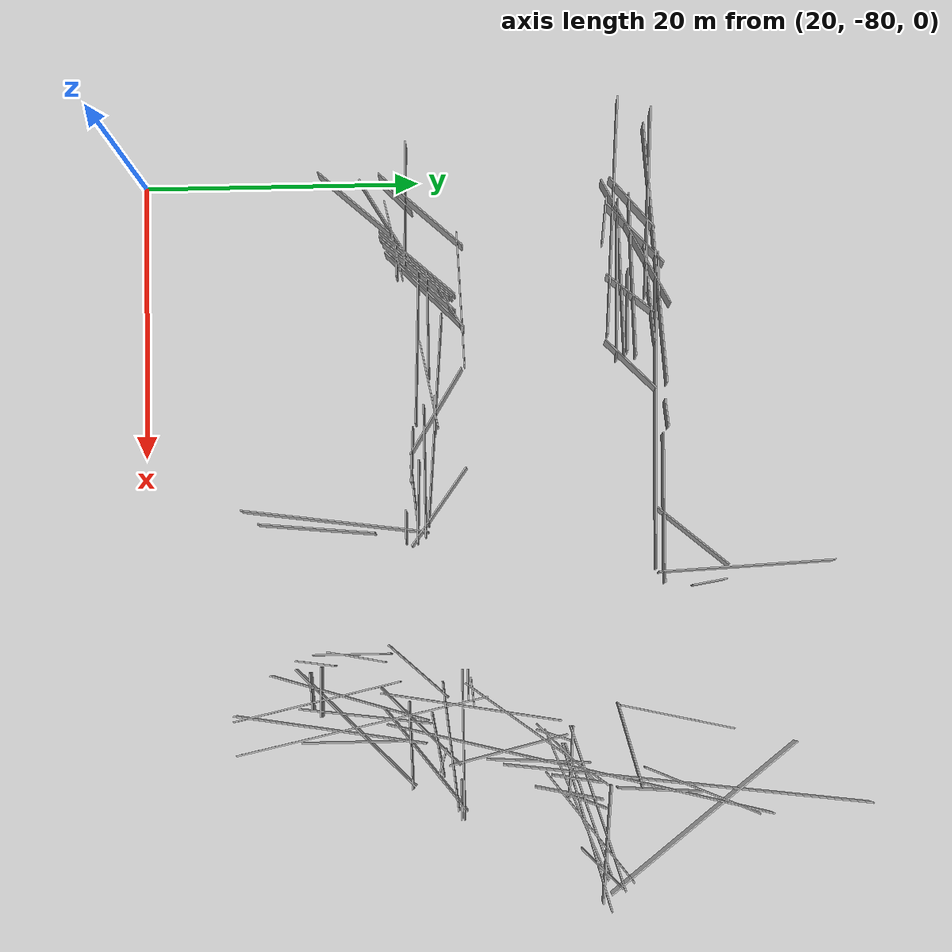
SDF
<sdf version="1.6">
 <world name="slam_world">
  <model name="ground_plane">
   <static>true</static>
   <link name="link">
    <collision name="collision">
     <geometry><plane><normal>0 0 1</normal><size>100 100</size></plane></geometry>
    </collision>
    <visual name="visual">
     <geometry><plane><normal>0 0 1</normal><size>100 100</size></plane></geometry>
     <material>
      <ambient>0.8 0.8 0.8 1</ambient>
      <diffuse>0.8 0.8 0.8 1</diffuse>
      <specular>0.8 0.8 0.8 1</specular>
     </material>
    </visual>
   </link>
  </model>
  <model name="wall_27">
   <static>true</static>
   <pose>34.1 -44.8 1.0 0 0 0.7853981633974463</pose>
   <link name="link">
    <collision name="collision"><geometry><box><size>5.091168824543144 0.1 2.0</size></box></geometry></collision>
    <visual name="visual">
     <geometry><box><size>5.091168824543144 0.1 2.0</size></box></geometry>
     <material><ambient>0.5 0.5 0.5 1</ambient><diffuse>0.7 0.7 0.7 1</diffuse></material>
    </visual>
   </link>
  </model>
  <model name="wall_30">
   <static>true</static>
   <pose>61.00000000000001 -61.1 1.0 0 0 0.032246882435254365</pose>
   <link name="link">
    <collision name="collision"><geometry><box><size>6.203224967708332 0.1 2.0</size></box></geometry></collision>
    <visual name="visual">
     <geometry><box><size>6.203224967708332 0.1 2.0</size></box></geometry>
     <material><ambient>0.5 0.5 0.5 1</ambient><diffuse>0.7 0.7 0.7 1</diffuse></material>
    </visual>
   </link>
  </model>
  <model name="wall_52">
   <static>true</static>
   <pose>59.800000000000004 -66.8 1.0 0 0 1.4104208828189457</pose>
   <link name="link">
    <collision name="collision">
     <geometry><box><size>13.776792079435612 0.1 2.0</size></box></geometry>
    </collision>
    <visual name="visual">
     <geometry><box><size>13.776792079435612 0.1 2.0</size></box></geometry>
     <material><ambient>0.5 0.5 0.5 1</ambient><diffuse>0.7 0.7 0.7 1</diffuse></material>
    </visual>
   </link>
  </model>
  <model name="wall_70">
   <static>true</static>
   <pose>43.7 -60.3 1.0 0 0 -0.0333209958782453</pose>
   <link name="link">
    <collision name="collision"><geometry><box><size>6.003332407921453 0.1 2.0</size></box></geometry></collision>
    <visual name="visual">
     <geometry><box><size>6.003332407921453 0.1 2.0</size></box></geometry>
     <material><ambient>0.5 0.5 0.5 1</ambient><diffuse>0.7 0.7 0.7 1</diffuse></material>
    </visual>
   </link>
  </model>
  <model name="wall_113">
   <static>true</static>
   <pose>64.1 -41.599999999999994 1.0 0 0 1.448335269377555</pose>
   <link name="link">
    <collision name="collision">
     <geometry><box><size>26.196182928052707 0.1 2.0</size></box></geometry>
    </collision>
    <visual name="visual">
     <geometry><box><size>26.196182928052707 0.1 2.0</size></box></geometry>
     <material><ambient>0.5 0.5 0.5 1</ambient><diffuse>0.7 0.7 0.7 1</diffuse></material>
    </visual>
   </link>
  </model>
  <model name="wall_114">
   <static>true</static>
   <pose>21.4 -61.49999999999999 1.0 0 0 0.7853981633974483</pose>
   <link name="link">
    <collision name="collision"><geometry><box><size>3.111269837220813 0.1 2.0</size></box></geometry></collision>
    <visual name="visual">
     <geometry><box><size>3.111269837220813 0.1 2.0</size></box></geometry>
     <material><ambient>0.5 0.5 0.5 1</ambient><diffuse>0.7 0.7 0.7 1</diffuse></material>
    </visual>
   </link>
  </model>
  <model name="wall_126">
   <static>true</static>
   <pose>40.3 -60.699999999999996 1.0 0 0 -0.04995839572194347</pose>
   <link name="link">
    <collision name="collision"><geometry><box><size>4.004996878900157 0.1 2.0</size></box></geometry></collision>
    <visual name="visual">
     <geometry><box><size>4.004996878900157 0.1 2.0</size></box></geometry>
     <material><ambient>0.5 0.5 0.5 1</ambient><diffuse>0.7 0.7 0.7 1</diffuse></material>
    </visual>
   </link>
  </model>
  <model name="wall_132">
   <static>true</static>
   <pose>27.6 -42.599999999999994 1.0 0 0 0.0</pose>
   <link name="link">
    <collision name="collision">
     <geometry><box><size>3.3999999999999915 0.1 2.0</size></box></geometry>
    </collision>
    <visual name="visual">
     <geometry><box><size>3.3999999999999915 0.1 2.0</size></box></geometry>
     <material><ambient>0.5 0.5 0.5 1</ambient><diffuse>0.7 0.7 0.7 1</diffuse></material>
    </visual>
   </link>
  </model>
  <model name="wall_159">
   <static>true</static>
   <pose>63.6 -49.39999999999999 1.0 0 0 1.4056476493802672</pose>
   <link name="link">
    <collision name="collision">
     <geometry><box><size>3.6496575181789273 0.1 2.0</size></box></geometry>
    </collision>
    <visual name="visual">
     <geometry><box><size>3.6496575181789273 0.1 2.0</size></box></geometry>
     <material><ambient>0.5 0.5 0.5 1</ambient><diffuse>0.7 0.7 0.7 1</diffuse></material>
    </visual>
   </link>
  </model>
  <model name="wall_171">
   <static>true</static>
   <pose>38.00000000000001 -43.099999999999994 1.0 0 0 -0.027515989285454158</pose>
   <link name="link">
    <collision name="collision">
     <geometry><box><size>21.808255317654364 0.1 2.0</size></box></geometry>
    </collision>
    <visual name="visual">
     <geometry><box><size>21.808255317654364 0.1 2.0</size></box></geometry>
     <material><ambient>0.5 0.5 0.5 1</ambient><diffuse>0.7 0.7 0.7 1</diffuse></material>
    </visual>
   </link>
  </model>
  <model name="wall_186">
   <static>true</static>
   <pose>37.400000000000006 -59.0 1.0 0 0 0.0</pose>
   <link name="link">
    <collision name="collision">
     <geometry><box><size>2.5999999999999943 0.1 2.0</size></box></geometry>
    </collision>
    <visual name="visual">
     <geometry><box><size>2.5999999999999943 0.1 2.0</size></box></geometry>
     <material><ambient>0.5 0.5 0.5 1</ambient><diffuse>0.7 0.7 0.7 1</diffuse></material>
    </visual>
   </link>
  </model>
  <model name="wall_197">
   <static>true</static>
   <pose>21.800000000000004 -64.6 1.0 0 0 0.8465463260467475</pose>
   <link name="link">
    <collision name="collision"><geometry><box><size>6.94262198308391 0.1 2.0</size></box></geometry></collision>
    <visual name="visual">
     <geometry><box><size>6.94262198308391 0.1 2.0</size></box></geometry>
     <material><ambient>0.5 0.5 0.5 1</ambient><diffuse>0.7 0.7 0.7 1</diffuse></material>
    </visual>
   </link>
  </model>
  <model name="wall_202">
   <static>true</static>
   <pose>41.5 -59.8 1.0 0 0 0.0</pose>
   <link name="link">
    <collision name="collision"><geometry><box><size>9.599999999999994 0.1 2.0</size></box></geometry></collision>
    <visual name="visual">
     <geometry><box><size>9.599999999999994 0.1 2.0</size></box></geometry>
     <material><ambient>0.5 0.5 0.5 1</ambient><diffuse>0.7 0.7 0.7 1</diffuse></material>
    </visual>
   </link>
  </model>
  <model name="wall_252">
   <static>true</static>
   <pose>28.300000000000004 -59.599999999999994 1.0 0 0 0.7853981633974471</pose>
   <link name="link">
    <collision name="collision"><geometry><box><size>7.919595949289334 0.1 2.0</size></box></geometry></collision>
    <visual name="visual">
     <geometry><box><size>7.919595949289334 0.1 2.0</size></box></geometry>
     <material><ambient>0.5 0.5 0.5 1</ambient><diffuse>0.7 0.7 0.7 1</diffuse></material>
    </visual>
   </link>
  </model>
  <model name="wall_261">
   <static>true</static>
   <pose>44.50000000000001 -42.699999999999996 1.0 0 0 -0.01851640206800931</pose>
   <link name="link">
    <collision name="collision">
     <geometry><box><size>10.801851693112619 0.1 2.0</size></box></geometry>
    </collision>
    <visual name="visual">
     <geometry><box><size>10.801851693112619 0.1 2.0</size></box></geometry>
     <material><ambient>0.5 0.5 0.5 1</ambient><diffuse>0.7 0.7 0.7 1</diffuse></material>
    </visual>
   </link>
  </model>
  <model name="wall_263">
   <static>true</static>
   <pose>25.9 -42.79999999999999 1.0 0 0 0.06241880999595749</pose>
   <link name="link">
    <collision name="collision"><geometry><box><size>19.23746345025768 0.1 2.0</size></box></geometry></collision>
    <visual name="visual">
     <geometry><box><size>19.23746345025768 0.1 2.0</size></box></geometry>
     <material><ambient>0.5 0.5 0.5 1</ambient><diffuse>0.7 0.7 0.7 1</diffuse></material>
    </visual>
   </link>
  </model>
  <model name="wall_270">
   <static>true</static>
   <pose>61.0 -57.39999999999999 1.0 0 0 0.0</pose>
   <link name="link">
    <collision name="collision">
     <geometry><box><size>10.599999999999994 0.1 2.0</size></box></geometry>
    </collision>
    <visual name="visual">
     <geometry><box><size>10.599999999999994 0.1 2.0</size></box></geometry>
     <material><ambient>0.5 0.5 0.5 1</ambient><diffuse>0.7 0.7 0.7 1</diffuse></material>
    </visual>
   </link>
  </model>
  <model name="wall_277">
   <static>true</static>
   <pose>59.7 -65.0 1.0 0 0 0.7853981633974475</pose>
   <link name="link">
    <collision name="collision">
     <geometry><box><size>11.879393923933996 0.1 2.0</size></box></geometry>
    </collision>
    <visual name="visual">
     <geometry><box><size>11.879393923933996 0.1 2.0</size></box></geometry>
     <material><ambient>0.5 0.5 0.5 1</ambient><diffuse>0.7 0.7 0.7 1</diffuse></material>
    </visual>
   </link>
  </model>
  <model name="wall_312">
   <static>true</static>
   <pose>32.400000000000006 -60.199999999999996 1.0 0 0 -0.0350733305332246</pose>
   <link name="link">
    <collision name="collision">
     <geometry><box><size>11.407015385279363 0.1 2.0</size></box></geometry>
    </collision>
    <visual name="visual">
     <geometry><box><size>11.407015385279363 0.1 2.0</size></box></geometry>
     <material><ambient>0.5 0.5 0.5 1</ambient><diffuse>0.7 0.7 0.7 1</diffuse></material>
    </visual>
   </link>
  </model>
  <model name="wall_337">
   <static>true</static>
   <pose>30.900000000000006 -59.39999999999999 1.0 0 0 0.0</pose>
   <link name="link">
    <collision name="collision"><geometry><box><size>7.599999999999994 0.1 2.0</size></box></geometry></collision>
    <visual name="visual">
     <geometry><box><size>7.599999999999994 0.1 2.0</size></box></geometry>
     <material><ambient>0.5 0.5 0.5 1</ambient><diffuse>0.7 0.7 0.7 1</diffuse></material>
    </visual>
   </link>
  </model>
  <model name="wall_353">
   <static>true</static>
   <pose>24.5 -61.8 1.0 0 0 0.21109333322274482</pose>
   <link name="link">
    <collision name="collision"><geometry><box><size>5.727128425310533 0.1 2.0</size></box></geometry></collision>
    <visual name="visual">
     <geometry><box><size>5.727128425310533 0.1 2.0</size></box></geometry>
     <material><ambient>0.5 0.5 0.5 1</ambient><diffuse>0.7 0.7 0.7 1</diffuse></material>
    </visual>
   </link>
  </model>
  <model name="wall_365">
   <static>true</static>
   <pose>55.1 -67.8 1.0 0 0 1.4288992721907348</pose>
   <link name="link">
    <collision name="collision"><geometry><box><size>2.828427124746172 0.1 2.0</size></box></geometry></collision>
    <visual name="visual">
     <geometry><box><size>2.828427124746172 0.1 2.0</size></box></geometry>
     <material><ambient>0.5 0.5 0.5 1</ambient><diffuse>0.7 0.7 0.7 1</diffuse></material>
    </visual>
   </link>
  </model>
  <model name="wall_373">
   <static>true</static>
   <pose>28.9 -44.699999999999996 1.0 0 0 0.8818719385800344</pose>
   <link name="link">
    <collision name="collision">
     <geometry><box><size>4.4045431091090395 0.1 2.0</size></box></geometry>
    </collision>
    <visual name="visual">
     <geometry><box><size>4.4045431091090395 0.1 2.0</size></box></geometry>
     <material><ambient>0.5 0.5 0.5 1</ambient><diffuse>0.7 0.7 0.7 1</diffuse></material>
    </visual>
   </link>
  </model>
  <model name="wall_375">
   <static>true</static>
   <pose>62.9 -49.199999999999996 1.0 0 0 1.3258176636680326</pose>
   <link name="link">
    <collision name="collision">
     <geometry><box><size>28.037118254200095 0.1 2.0</size></box></geometry>
    </collision>
    <visual name="visual">
     <geometry><box><size>28.037118254200095 0.1 2.0</size></box></geometry>
     <material><ambient>0.5 0.5 0.5 1</ambient><diffuse>0.7 0.7 0.7 1</diffuse></material>
    </visual>
   </link>
  </model>
  <model name="wall_377">
   <static>true</static>
   <pose>25.1 -44.199999999999996 1.0 0 0 0.48088728019533544</pose>
   <link name="link">
    <collision name="collision">
     <geometry><box><size>10.376897416858279 0.1 2.0</size></box></geometry>
    </collision>
    <visual name="visual">
     <geometry><box><size>10.376897416858279 0.1 2.0</size></box></geometry>
     <material><ambient>0.5 0.5 0.5 1</ambient><diffuse>0.7 0.7 0.7 1</diffuse></material>
    </visual>
   </link>
  </model>
  <model name="wall_398">
   <static>true</static>
   <pose>57.800000000000004 -67.69999999999999 1.0 0 0 -1.3539227111284875</pose>
   <link name="link">
    <collision name="collision"><geometry><box><size>12.08304597359457 0.1 2.0</size></box></geometry></collision>
    <visual name="visual">
     <geometry><box><size>12.08304597359457 0.1 2.0</size></box></geometry>
     <material><ambient>0.5 0.5 0.5 1</ambient><diffuse>0.7 0.7 0.7 1</diffuse></material>
    </visual>
   </link>
  </model>
  <model name="wall_414">
   <static>true</static>
   <pose>45.50000000000001 -67.6 1.0 0 0 1.4758446204521407</pose>
   <link name="link">
    <collision name="collision"><geometry><box><size>8.438009243891601 0.1 2.0</size></box></geometry></collision>
    <visual name="visual">
     <geometry><box><size>8.438009243891601 0.1 2.0</size></box></geometry>
     <material><ambient>0.5 0.5 0.5 1</ambient><diffuse>0.7 0.7 0.7 1</diffuse></material>
    </visual>
   </link>
  </model>
  <model name="wall_430">
   <static>true</static>
   <pose>58.9 -64.3 1.0 0 0 1.4438235371808175</pose>
   <link name="link">
    <collision name="collision"><geometry><box><size>9.476286192385713 0.1 2.0</size></box></geometry></collision>
    <visual name="visual">
     <geometry><box><size>9.476286192385713 0.1 2.0</size></box></geometry>
     <material><ambient>0.5 0.5 0.5 1</ambient><diffuse>0.7 0.7 0.7 1</diffuse></material>
    </visual>
   </link>
  </model>
  <model name="wall_461">
   <static>true</static>
   <pose>65.70000000000002 -47.99999999999999 1.0 0 0 0.3009202343604256</pose>
   <link name="link">
    <collision name="collision">
     <geometry><box><size>12.145781160551191 0.1 2.0</size></box></geometry>
    </collision>
    <visual name="visual">
     <geometry><box><size>12.145781160551191 0.1 2.0</size></box></geometry>
     <material><ambient>0.5 0.5 0.5 1</ambient><diffuse>0.7 0.7 0.7 1</diffuse></material>
    </visual>
   </link>
  </model>
  <model name="wall_469">
   <static>true</static>
   <pose>68.2 -47.4 1.0 0 0 -0.09725319825156556</pose>
   <link name="link">
    <collision name="collision"><geometry><box><size>8.238931969618381 0.1 2.0</size></box></geometry></collision>
    <visual name="visual">
     <geometry><box><size>8.238931969618381 0.1 2.0</size></box></geometry>
     <material><ambient>0.5 0.5 0.5 1</ambient><diffuse>0.7 0.7 0.7 1</diffuse></material>
    </visual>
   </link>
  </model>
  <model name="wall_489">
   <static>true</static>
   <pose>27.800000000000004 -45.599999999999994 1.0 0 0 -0.0338853299041181</pose>
   <link name="link">
    <collision name="collision"><geometry><box><size>11.80677771451635 0.1 2.0</size></box></geometry></collision>
    <visual name="visual">
     <geometry><box><size>11.80677771451635 0.1 2.0</size></box></geometry>
     <material><ambient>0.5 0.5 0.5 1</ambient><diffuse>0.7 0.7 0.7 1</diffuse></material>
    </visual>
   </link>
  </model>
  <model name="wall_495">
   <static>true</static>
   <pose>62.0 -60.1 1.0 0 0 0.664774494817345</pose>
   <link name="link">
    <collision name="collision"><geometry><box><size>9.40212741883453 0.1 2.0</size></box></geometry></collision>
    <visual name="visual">
     <geometry><box><size>9.40212741883453 0.1 2.0</size></box></geometry>
     <material><ambient>0.5 0.5 0.5 1</ambient><diffuse>0.7 0.7 0.7 1</diffuse></material>
    </visual>
   </link>
  </model>
  <model name="wall_513">
   <static>true</static>
   <pose>27.5 -44.49999999999999 1.0 0 0 0.016665123713940987</pose>
   <link name="link">
    <collision name="collision">
     <geometry><box><size>12.001666550941998 0.1 2.0</size></box></geometry>
    </collision>
    <visual name="visual">
     <geometry><box><size>12.001666550941998 0.1 2.0</size></box></geometry>
     <material><ambient>0.5 0.5 0.5 1</ambient><diffuse>0.7 0.7 0.7 1</diffuse></material>
    </visual>
   </link>
  </model>
  <model name="wall_519">
   <static>true</static>
   <pose>62.400000000000006 -49.8 1.0 0 0 -0.07982998571223844</pose>
   <link name="link">
    <collision name="collision"><geometry><box><size>5.015974481593782 0.1 2.0</size></box></geometry></collision>
    <visual name="visual">
     <geometry><box><size>5.015974481593782 0.1 2.0</size></box></geometry>
     <material><ambient>0.5 0.5 0.5 1</ambient><diffuse>0.7 0.7 0.7 1</diffuse></material>
    </visual>
   </link>
  </model>
  <model name="wall_532">
   <static>true</static>
   <pose>58.4 -56.8 1.0 0 0 1.4005844015094222</pose>
   <link name="link">
    <collision name="collision">
     <geometry><box><size>12.987686476043386 0.1 2.0</size></box></geometry>
    </collision>
    <visual name="visual">
     <geometry><box><size>12.987686476043386 0.1 2.0</size></box></geometry>
     <material><ambient>0.5 0.5 0.5 1</ambient><diffuse>0.7 0.7 0.7 1</diffuse></material>
    </visual>
   </link>
  </model>
  <model name="wall_542">
   <static>true</static>
   <pose>57.6 -65.4 1.0 0 0 1.2760662215855199</pose>
   <link name="link">
    <collision name="collision">
     <geometry><box><size>11.704699910719626 0.1 2.0</size></box></geometry>
    </collision>
    <visual name="visual">
     <geometry><box><size>11.704699910719626 0.1 2.0</size></box></geometry>
     <material><ambient>0.5 0.5 0.5 1</ambient><diffuse>0.7 0.7 0.7 1</diffuse></material>
    </visual>
   </link>
  </model>
  <model name="wall_548">
   <static>true</static>
   <pose>22.400000000000006 -59.8 1.0 0 0 0.8379812250083896</pose>
   <link name="link">
    <collision name="collision"><geometry><box><size>8.07217442824423 0.1 2.0</size></box></geometry></collision>
    <visual name="visual">
     <geometry><box><size>8.07217442824423 0.1 2.0</size></box></geometry>
     <material><ambient>0.5 0.5 0.5 1</ambient><diffuse>0.7 0.7 0.7 1</diffuse></material>
    </visual>
   </link>
  </model>
  <model name="wall_551">
   <static>true</static>
   <pose>64.5 -43.599999999999994 1.0 0 0 1.504228163019072</pose>
   <link name="link">
    <collision name="collision"><geometry><box><size>6.013318551349164 0.1 2.0</size></box></geometry></collision>
    <visual name="visual">
     <geometry><box><size>6.013318551349164 0.1 2.0</size></box></geometry>
     <material><ambient>0.5 0.5 0.5 1</ambient><diffuse>0.7 0.7 0.7 1</diffuse></material>
    </visual>
   </link>
  </model>
  <model name="wall_552">
   <static>true</static>
   <pose>60.50000000000001 -50.99999999999999 1.0 0 0 1.2490457723982544</pose>
   <link name="link">
    <collision name="collision"><geometry><box><size>2.529822128134694 0.1 2.0</size></box></geometry></collision>
    <visual name="visual">
     <geometry><box><size>2.529822128134694 0.1 2.0</size></box></geometry>
     <material><ambient>0.5 0.5 0.5 1</ambient><diffuse>0.7 0.7 0.7 1</diffuse></material>
    </visual>
   </link>
  </model>
  <model name="wall_567">
   <static>true</static>
   <pose>44.1 -58.8 1.0 0 0 -0.6202494859828207</pose>
   <link name="link">
    <collision name="collision"><geometry><box><size>6.881860213634108 0.1 2.0</size></box></geometry></collision>
    <visual name="visual">
     <geometry><box><size>6.881860213634108 0.1 2.0</size></box></geometry>
     <material><ambient>0.5 0.5 0.5 1</ambient><diffuse>0.7 0.7 0.7 1</diffuse></material>
    </visual>
   </link>
  </model>
  <model name="wall_569">
   <static>true</static>
   <pose>65.1 -48.99999999999999 1.0 0 0 1.212025656524324</pose>
   <link name="link">
    <collision name="collision"><geometry><box><size>3.417601498127016 0.1 2.0</size></box></geometry></collision>
    <visual name="visual">
     <geometry><box><size>3.417601498127016 0.1 2.0</size></box></geometry>
     <material><ambient>0.5 0.5 0.5 1</ambient><diffuse>0.7 0.7 0.7 1</diffuse></material>
    </visual>
   </link>
  </model>
  <model name="wall_576">
   <static>true</static>
   <pose>45.5 -61.2 1.0 0 0 0.0</pose>
   <link name="link">
    <collision name="collision">
     <geometry><box><size>2.4000000000000057 0.1 2.0</size></box></geometry>
    </collision>
    <visual name="visual">
     <geometry><box><size>2.4000000000000057 0.1 2.0</size></box></geometry>
     <material><ambient>0.5 0.5 0.5 1</ambient><diffuse>0.7 0.7 0.7 1</diffuse></material>
    </visual>
   </link>
  </model>
  <model name="wall_600">
   <static>true</static>
   <pose>57.1 -68.1 1.0 0 0 0.07130746478528636</pose>
   <link name="link">
    <collision name="collision">
     <geometry><box><size>2.8071337695236362 0.1 2.0</size></box></geometry>
    </collision>
    <visual name="visual">
     <geometry><box><size>2.8071337695236362 0.1 2.0</size></box></geometry>
     <material><ambient>0.5 0.5 0.5 1</ambient><diffuse>0.7 0.7 0.7 1</diffuse></material>
    </visual>
   </link>
  </model>
  <model name="wall_603">
   <static>true</static>
   <pose>23.300000000000004 -62.3 1.0 0 0 0.5358112379604656</pose>
   <link name="link">
    <collision name="collision">
     <geometry><box><size>7.4431176263713565 0.1 2.0</size></box></geometry>
    </collision>
    <visual name="visual">
     <geometry><box><size>7.4431176263713565 0.1 2.0</size></box></geometry>
     <material><ambient>0.5 0.5 0.5 1</ambient><diffuse>0.7 0.7 0.7 1</diffuse></material>
    </visual>
   </link>
  </model>
  <model name="wall_604">
   <static>true</static>
   <pose>48.800000000000004 -36.89999999999999 1.0 0 0 -1.5232132235179126</pose>
   <link name="link">
    <collision name="collision">
     <geometry><box><size>12.614277624977177 0.1 2.0</size></box></geometry>
    </collision>
    <visual name="visual">
     <geometry><box><size>12.614277624977177 0.1 2.0</size></box></geometry>
     <material><ambient>0.5 0.5 0.5 1</ambient><diffuse>0.7 0.7 0.7 1</diffuse></material>
    </visual>
   </link>
  </model>
  <model name="wall_629">
   <static>true</static>
   <pose>49.900000000000006 -39.599999999999994 1.0 0 0 -1.4056476493802679</pose>
   <link name="link">
    <collision name="collision">
     <geometry><box><size>2.4331050121192943 0.1 2.0</size></box></geometry>
    </collision>
    <visual name="visual">
     <geometry><box><size>2.4331050121192943 0.1 2.0</size></box></geometry>
     <material><ambient>0.5 0.5 0.5 1</ambient><diffuse>0.7 0.7 0.7 1</diffuse></material>
    </visual>
   </link>
  </model>
  <model name="wall_633">
   <static>true</static>
   <pose>62.300000000000004 -52.099999999999994 1.0 0 0 1.5167948264189295</pose>
   <link name="link">
    <collision name="collision"><geometry><box><size>7.410802925459567 0.1 2.0</size></box></geometry></collision>
    <visual name="visual">
     <geometry><box><size>7.410802925459567 0.1 2.0</size></box></geometry>
     <material><ambient>0.5 0.5 0.5 1</ambient><diffuse>0.7 0.7 0.7 1</diffuse></material>
    </visual>
   </link>
  </model>
  <model name="wall_672">
   <static>true</static>
   <pose>64.60000000000001 -49.99999999999999 1.0 0 0 1.365400937605129</pose>
   <link name="link">
    <collision name="collision"><geometry><box><size>4.903060268852503 0.1 2.0</size></box></geometry></collision>
    <visual name="visual">
     <geometry><box><size>4.903060268852503 0.1 2.0</size></box></geometry>
     <material><ambient>0.5 0.5 0.5 1</ambient><diffuse>0.7 0.7 0.7 1</diffuse></material>
    </visual>
   </link>
  </model>
  <model name="wall_678">
   <static>true</static>
   <pose>22.0 -60.9 1.0 0 0 -0.021273386024061494</pose>
   <link name="link">
    <collision name="collision"><geometry><box><size>9.402127418834533 0.1 2.0</size></box></geometry></collision>
    <visual name="visual">
     <geometry><box><size>9.402127418834533 0.1 2.0</size></box></geometry>
     <material><ambient>0.5 0.5 0.5 1</ambient><diffuse>0.7 0.7 0.7 1</diffuse></material>
    </visual>
   </link>
  </model>
  <model name="wall_695">
   <static>true</static>
   <pose>37.800000000000004 -58.99999999999999 1.0 0 0 -0.07776493960273256</pose>
   <link name="link">
    <collision name="collision">
     <geometry><box><size>15.446682491719693 0.1 2.0</size></box></geometry>
    </collision>
    <visual name="visual">
     <geometry><box><size>15.446682491719693 0.1 2.0</size></box></geometry>
     <material><ambient>0.5 0.5 0.5 1</ambient><diffuse>0.7 0.7 0.7 1</diffuse></material>
    </visual>
   </link>
  </model>
  <model name="wall_702">
   <static>true</static>
   <pose>64.6 -40.599999999999994 1.0 0 0 1.168925679354441</pose>
   <link name="link">
    <collision name="collision"><geometry><box><size>8.692525524840288 0.1 2.0</size></box></geometry></collision>
    <visual name="visual">
     <geometry><box><size>8.692525524840288 0.1 2.0</size></box></geometry>
     <material><ambient>0.5 0.5 0.5 1</ambient><diffuse>0.7 0.7 0.7 1</diffuse></material>
    </visual>
   </link>
  </model>
  <model name="wall_707">
   <static>true</static>
   <pose>59.7 -60.4 1.0 0 0 0.7853981633974496</pose>
   <link name="link">
    <collision name="collision"><geometry><box><size>7.919595949289334 0.1 2.0</size></box></geometry></collision>
    <visual name="visual">
     <geometry><box><size>7.919595949289334 0.1 2.0</size></box></geometry>
     <material><ambient>0.5 0.5 0.5 1</ambient><diffuse>0.7 0.7 0.7 1</diffuse></material>
    </visual>
   </link>
  </model>
  <model name="wall_710">
   <static>true</static>
   <pose>56.800000000000004 -57.0 1.0 0 0 0.0</pose>
   <link name="link">
    <collision name="collision"><geometry><box><size>2.200000000000003 0.1 2.0</size></box></geometry></collision>
    <visual name="visual">
     <geometry><box><size>2.200000000000003 0.1 2.0</size></box></geometry>
     <material><ambient>0.5 0.5 0.5 1</ambient><diffuse>0.7 0.7 0.7 1</diffuse></material>
    </visual>
   </link>
  </model>
  <model name="wall_712">
   <static>true</static>
   <pose>59.6 -64.5 1.0 0 0 -1.3604704531298393</pose>
   <link name="link">
    <collision name="collision"><geometry><box><size>18.20109886792554 0.1 2.0</size></box></geometry></collision>
    <visual name="visual">
     <geometry><box><size>18.20109886792554 0.1 2.0</size></box></geometry>
     <material><ambient>0.5 0.5 0.5 1</ambient><diffuse>0.7 0.7 0.7 1</diffuse></material>
    </visual>
   </link>
  </model>
  <model name="wall_717">
   <static>true</static>
   <pose>23.1 -45.79999999999999 1.0 0 0 -0.0680764582579996</pose>
   <link name="link">
    <collision name="collision">
     <geometry><box><size>17.640861656959963 0.1 2.0</size></box></geometry>
    </collision>
    <visual name="visual">
     <geometry><box><size>17.640861656959963 0.1 2.0</size></box></geometry>
     <material><ambient>0.5 0.5 0.5 1</ambient><diffuse>0.7 0.7 0.7 1</diffuse></material>
    </visual>
   </link>
  </model>
  <model name="wall_718">
   <static>true</static>
   <pose>59.4 -42.19999999999999 1.0 0 0 1.3494818844471057</pose>
   <link name="link">
    <collision name="collision"><geometry><box><size>8.2 0.1 2.0</size></box></geometry></collision>
    <visual name="visual">
     <geometry><box><size>8.2 0.1 2.0</size></box></geometry>
     <material><ambient>0.5 0.5 0.5 1</ambient><diffuse>0.7 0.7 0.7 1</diffuse></material>
    </visual>
   </link>
  </model>
  <model name="wall_729">
   <static>true</static>
   <pose>26.300000000000004 -60.099999999999994 1.0 0 0 0.8441539861131718</pose>
   <link name="link">
    <collision name="collision"><geometry><box><size>7.224956747275379 0.1 2.0</size></box></geometry></collision>
    <visual name="visual">
     <geometry><box><size>7.224956747275379 0.1 2.0</size></box></geometry>
     <material><ambient>0.5 0.5 0.5 1</ambient><diffuse>0.7 0.7 0.7 1</diffuse></material>
    </visual>
   </link>
  </model>
  <model name="wall_738">
   <static>true</static>
   <pose>29.000000000000007 -57.0 1.0 0 0 0.04079368286786599</pose>
   <link name="link">
    <collision name="collision"><geometry><box><size>9.80815986819138 0.1 2.0</size></box></geometry></collision>
    <visual name="visual">
     <geometry><box><size>9.80815986819138 0.1 2.0</size></box></geometry>
     <material><ambient>0.5 0.5 0.5 1</ambient><diffuse>0.7 0.7 0.7 1</diffuse></material>
    </visual>
   </link>
  </model>
  <model name="wall_760">
   <static>true</static>
   <pose>23.400000000000006 -46.39999999999999 1.0 0 0 -0.11710874456686574</pose>
   <link name="link">
    <collision name="collision"><geometry><box><size>3.423448553724744 0.1 2.0</size></box></geometry></collision>
    <visual name="visual">
     <geometry><box><size>3.423448553724744 0.1 2.0</size></box></geometry>
     <material><ambient>0.5 0.5 0.5 1</ambient><diffuse>0.7 0.7 0.7 1</diffuse></material>
    </visual>
   </link>
  </model>
  <model name="wall_764">
   <static>true</static>
   <pose>28.800000000000004 -45.29999999999999 1.0 0 0 0.021273386024061525</pose>
   <link name="link">
    <collision name="collision"><geometry><box><size>9.40212741883452 0.1 2.0</size></box></geometry></collision>
    <visual name="visual">
     <geometry><box><size>9.40212741883452 0.1 2.0</size></box></geometry>
     <material><ambient>0.5 0.5 0.5 1</ambient><diffuse>0.7 0.7 0.7 1</diffuse></material>
    </visual>
   </link>
  </model>
  <model name="wall_772">
   <static>true</static>
   <pose>27.700000000000003 -59.8 1.0 0 0 0.8288490587889796</pose>
   <link name="link">
    <collision name="collision"><geometry><box><size>6.511528238439895 0.1 2.0</size></box></geometry></collision>
    <visual name="visual">
     <geometry><box><size>6.511528238439895 0.1 2.0</size></box></geometry>
     <material><ambient>0.5 0.5 0.5 1</ambient><diffuse>0.7 0.7 0.7 1</diffuse></material>
    </visual>
   </link>
  </model>
  <model name="wall_781">
   <static>true</static>
   <pose>37.7 -42.29999999999999 1.0 0 0 0.09966865249116344</pose>
   <link name="link">
    <collision name="collision">
     <geometry><box><size>2.0099751242241783 0.1 2.0</size></box></geometry>
    </collision>
    <visual name="visual">
     <geometry><box><size>2.0099751242241783 0.1 2.0</size></box></geometry>
     <material><ambient>0.5 0.5 0.5 1</ambient><diffuse>0.7 0.7 0.7 1</diffuse></material>
    </visual>
   </link>
  </model>
  <model name="wall_784">
   <static>true</static>
   <pose>35.2 -59.4 1.0 0 0 0.19118445959701522</pose>
   <link name="link">
    <collision name="collision"><geometry><box><size>6.315061361538767 0.1 2.0</size></box></geometry></collision>
    <visual name="visual">
     <geometry><box><size>6.315061361538767 0.1 2.0</size></box></geometry>
     <material><ambient>0.5 0.5 0.5 1</ambient><diffuse>0.7 0.7 0.7 1</diffuse></material>
    </visual>
   </link>
  </model>
  <model name="wall_793">
   <static>true</static>
   <pose>67.0 -48.79999999999999 1.0 0 0 0.26481732990578943</pose>
   <link name="link">
    <collision name="collision">
     <geometry><box><size>12.226201372462324 0.1 2.0</size></box></geometry>
    </collision>
    <visual name="visual">
     <geometry><box><size>12.226201372462324 0.1 2.0</size></box></geometry>
     <material><ambient>0.5 0.5 0.5 1</ambient><diffuse>0.7 0.7 0.7 1</diffuse></material>
    </visual>
   </link>
  </model>
  <model name="wall_801">
   <static>true</static>
   <pose>30.10000000000001 -44.9 1.0 0 0 -0.03332099587824767</pose>
   <link name="link">
    <collision name="collision"><geometry><box><size>6.003332407921453 0.1 2.0</size></box></geometry></collision>
    <visual name="visual">
     <geometry><box><size>6.003332407921453 0.1 2.0</size></box></geometry>
     <material><ambient>0.5 0.5 0.5 1</ambient><diffuse>0.7 0.7 0.7 1</diffuse></material>
    </visual>
   </link>
  </model>
  <model name="wall_804">
   <static>true</static>
   <pose>60.400000000000006 -52.199999999999996 1.0 0 0 0.9337259975192134</pose>
   <link name="link">
    <collision name="collision">
     <geometry><box><size>12.440257232067204 0.1 2.0</size></box></geometry>
    </collision>
    <visual name="visual">
     <geometry><box><size>12.440257232067204 0.1 2.0</size></box></geometry>
     <material><ambient>0.5 0.5 0.5 1</ambient><diffuse>0.7 0.7 0.7 1</diffuse></material>
    </visual>
   </link>
  </model>
  <model name="wall_805">
   <static>true</static>
   <pose>64.9 -57.599999999999994 1.0 0 0 0.0</pose>
   <link name="link">
    <collision name="collision"><geometry><box><size>2.799999999999997 0.1 2.0</size></box></geometry></collision>
    <visual name="visual">
     <geometry><box><size>2.799999999999997 0.1 2.0</size></box></geometry>
     <material><ambient>0.5 0.5 0.5 1</ambient><diffuse>0.7 0.7 0.7 1</diffuse></material>
    </visual>
   </link>
  </model>
  <model name="wall_810">
   <static>true</static>
   <pose>46.6 -40.69999999999999 1.0 0 0 0.8721365020734331</pose>
   <link name="link">
    <collision name="collision"><geometry><box><size>6.529931086925806 0.1 2.0</size></box></geometry></collision>
    <visual name="visual">
     <geometry><box><size>6.529931086925806 0.1 2.0</size></box></geometry>
     <material><ambient>0.5 0.5 0.5 1</ambient><diffuse>0.7 0.7 0.7 1</diffuse></material>
    </visual>
   </link>
  </model>
  <model name="wall_817">
   <static>true</static>
   <pose>22.1 -43.199999999999996 1.0 0 0 -0.057080782406264345</pose>
   <link name="link">
    <collision name="collision">
     <geometry><box><size>14.022838514366496 0.1 2.0</size></box></geometry>
    </collision>
    <visual name="visual">
     <geometry><box><size>14.022838514366496 0.1 2.0</size></box></geometry>
     <material><ambient>0.5 0.5 0.5 1</ambient><diffuse>0.7 0.7 0.7 1</diffuse></material>
    </visual>
   </link>
  </model>
  <model name="wall_847">
   <static>true</static>
   <pose>57.1 -67.4 1.0 0 0 0.0</pose>
   <link name="link">
    <collision name="collision">
     <geometry><box><size>3.6000000000000085 0.1 2.0</size></box></geometry>
    </collision>
    <visual name="visual">
     <geometry><box><size>3.6000000000000085 0.1 2.0</size></box></geometry>
     <material><ambient>0.5 0.5 0.5 1</ambient><diffuse>0.7 0.7 0.7 1</diffuse></material>
    </visual>
   </link>
  </model>
  <model name="wall_853">
   <static>true</static>
   <pose>61.800000000000004 -50.099999999999994 1.0 0 0 0.7853981633974466</pose>
   <link name="link">
    <collision name="collision"><geometry><box><size>5.939696961966994 0.1 2.0</size></box></geometry></collision>
    <visual name="visual">
     <geometry><box><size>5.939696961966994 0.1 2.0</size></box></geometry>
     <material><ambient>0.5 0.5 0.5 1</ambient><diffuse>0.7 0.7 0.7 1</diffuse></material>
    </visual>
   </link>
  </model>
  <model name="wall_862">
   <static>true</static>
   <pose>22.200000000000003 -44.4 1.0 0 0 0.6998928697192426</pose>
   <link name="link">
    <collision name="collision"><geometry><box><size>4.967896939349699 0.1 2.0</size></box></geometry></collision>
    <visual name="visual">
     <geometry><box><size>4.967896939349699 0.1 2.0</size></box></geometry>
     <material><ambient>0.5 0.5 0.5 1</ambient><diffuse>0.7 0.7 0.7 1</diffuse></material>
    </visual>
   </link>
  </model>
  <model name="wall_864">
   <static>true</static>
   <pose>43.10000000000001 -60.599999999999994 1.0 0 0 0.09966865249116344</pose>
   <link name="link">
    <collision name="collision"><geometry><box><size>4.019950248448357 0.1 2.0</size></box></geometry></collision>
    <visual name="visual">
     <geometry><box><size>4.019950248448357 0.1 2.0</size></box></geometry>
     <material><ambient>0.5 0.5 0.5 1</ambient><diffuse>0.7 0.7 0.7 1</diffuse></material>
    </visual>
   </link>
  </model>
  <model name="wall_873">
   <static>true</static>
   <pose>61.5 -54.199999999999996 1.0 0 0 -1.337053145925995</pose>
   <link name="link">
    <collision name="collision"><geometry><box><size>8.634813257969153 0.1 2.0</size></box></geometry></collision>
    <visual name="visual">
     <geometry><box><size>8.634813257969153 0.1 2.0</size></box></geometry>
     <material><ambient>0.5 0.5 0.5 1</ambient><diffuse>0.7 0.7 0.7 1</diffuse></material>
    </visual>
   </link>
  </model>
  <model name="wall_892">
   <static>true</static>
   <pose>60.7 -65.19999999999999 1.0 0 0 1.5707963267948966</pose>
   <link name="link">
    <collision name="collision"><geometry><box><size>7.200000000000003 0.1 2.0</size></box></geometry></collision>
    <visual name="visual">
     <geometry><box><size>7.200000000000003 0.1 2.0</size></box></geometry>
     <material><ambient>0.5 0.5 0.5 1</ambient><diffuse>0.7 0.7 0.7 1</diffuse></material>
    </visual>
   </link>
  </model>
  <model name="wall_898">
   <static>true</static>
   <pose>26.6 -60.199999999999996 1.0 0 0 0.8465463260467488</pose>
   <link name="link">
    <collision name="collision"><geometry><box><size>6.942621983083921 0.1 2.0</size></box></geometry></collision>
    <visual name="visual">
     <geometry><box><size>6.942621983083921 0.1 2.0</size></box></geometry>
     <material><ambient>0.5 0.5 0.5 1</ambient><diffuse>0.7 0.7 0.7 1</diffuse></material>
    </visual>
   </link>
  </model>
  <model name="wall_899">
   <static>true</static>
   <pose>57.3 -56.699999999999996 1.0 0 0 0.09966865249116344</pose>
   <link name="link">
    <collision name="collision">
     <geometry><box><size>2.0099751242241783 0.1 2.0</size></box></geometry>
    </collision>
    <visual name="visual">
     <geometry><box><size>2.0099751242241783 0.1 2.0</size></box></geometry>
     <material><ambient>0.5 0.5 0.5 1</ambient><diffuse>0.7 0.7 0.7 1</diffuse></material>
    </visual>
   </link>
  </model>
  <model name="wall_917">
   <static>true</static>
   <pose>24.5 -44.19999999999999 1.0 0 0 0.7378150601204643</pose>
   <link name="link">
    <collision name="collision"><geometry><box><size>5.946427498927406 0.1 2.0</size></box></geometry></collision>
    <visual name="visual">
     <geometry><box><size>5.946427498927406 0.1 2.0</size></box></geometry>
     <material><ambient>0.5 0.5 0.5 1</ambient><diffuse>0.7 0.7 0.7 1</diffuse></material>
    </visual>
   </link>
  </model>
  <model name="wall_949">
   <static>true</static>
   <pose>66.5 -40.49999999999999 1.0 0 0 -0.910787283738964</pose>
   <link name="link">
    <collision name="collision">
     <geometry><box><size>16.962311163281964 0.1 2.0</size></box></geometry>
    </collision>
    <visual name="visual">
     <geometry><box><size>16.962311163281964 0.1 2.0</size></box></geometry>
     <material><ambient>0.5 0.5 0.5 1</ambient><diffuse>0.7 0.7 0.7 1</diffuse></material>
    </visual>
   </link>
  </model>
  <model name="wall_953">
   <static>true</static>
   <pose>67.0 -48.599999999999994 1.0 0 0 0.6556956262415372</pose>
   <link name="link">
    <collision name="collision"><geometry><box><size>9.840731680114022 0.1 2.0</size></box></geometry></collision>
    <visual name="visual">
     <geometry><box><size>9.840731680114022 0.1 2.0</size></box></geometry>
     <material><ambient>0.5 0.5 0.5 1</ambient><diffuse>0.7 0.7 0.7 1</diffuse></material>
    </visual>
   </link>
  </model>
  <model name="wall_959">
   <static>true</static>
   <pose>55.800000000000004 -60.49999999999999 1.0 0 0 0.8353565591193918</pose>
   <link name="link">
    <collision name="collision"><geometry><box><size>5.663920903402519 0.1 2.0</size></box></geometry></collision>
    <visual name="visual">
     <geometry><box><size>5.663920903402519 0.1 2.0</size></box></geometry>
     <material><ambient>0.5 0.5 0.5 1</ambient><diffuse>0.7 0.7 0.7 1</diffuse></material>
    </visual>
   </link>
  </model>
  <model name="wall_960">
   <static>true</static>
   <pose>54.7 -64.9 1.0 0 0 1.3825748214901235</pose>
   <link name="link">
    <collision name="collision"><geometry><box><size>4.275511665286395 0.1 2.0</size></box></geometry></collision>
    <visual name="visual">
     <geometry><box><size>4.275511665286395 0.1 2.0</size></box></geometry>
     <material><ambient>0.5 0.5 0.5 1</ambient><diffuse>0.7 0.7 0.7 1</diffuse></material>
    </visual>
   </link>
  </model>
  <model name="wall_965">
   <static>true</static>
   <pose>37.2 -58.9 1.0 0 0 -0.5498531826765855</pose>
   <link name="link">
    <collision name="collision"><geometry><box><size>7.271863585079125 0.1 2.0</size></box></geometry></collision>
    <visual name="visual">
     <geometry><box><size>7.271863585079125 0.1 2.0</size></box></geometry>
     <material><ambient>0.5 0.5 0.5 1</ambient><diffuse>0.7 0.7 0.7 1</diffuse></material>
    </visual>
   </link>
  </model>
  <model name="wall_978">
   <static>true</static>
   <pose>69.9 -47.79999999999999 1.0 0 0 0.7853981633974483</pose>
   <link name="link">
    <collision name="collision"><geometry><box><size>3.959797974644662 0.1 2.0</size></box></geometry></collision>
    <visual name="visual">
     <geometry><box><size>3.959797974644662 0.1 2.0</size></box></geometry>
     <material><ambient>0.5 0.5 0.5 1</ambient><diffuse>0.7 0.7 0.7 1</diffuse></material>
    </visual>
   </link>
  </model>
  <model name="wall_996">
   <static>true</static>
   <pose>61.3 -45.599999999999994 1.0 0 0 0.2606023917473401</pose>
   <link name="link">
    <collision name="collision"><geometry><box><size>6.209669878504008 0.1 2.0</size></box></geometry></collision>
    <visual name="visual">
     <geometry><box><size>6.209669878504008 0.1 2.0</size></box></geometry>
     <material><ambient>0.5 0.5 0.5 1</ambient><diffuse>0.7 0.7 0.7 1</diffuse></material>
    </visual>
   </link>
  </model>
  <model name="wall_1007">
   <static>true</static>
   <pose>61.0 -59.199999999999996 1.0 0 0 0.17219081452293863</pose>
   <link name="link">
    <collision name="collision"><geometry><box><size>4.669047011971495 0.1 2.0</size></box></geometry></collision>
    <visual name="visual">
     <geometry><box><size>4.669047011971495 0.1 2.0</size></box></geometry>
     <material><ambient>0.5 0.5 0.5 1</ambient><diffuse>0.7 0.7 0.7 1</diffuse></material>
    </visual>
   </link>
  </model>
  <model name="wall_1018">
   <static>true</static>
   <pose>29.4 -57.9 1.0 0 0 0.5247957716501082</pose>
   <link name="link">
    <collision name="collision"><geometry><box><size>4.390899680020029 0.1 2.0</size></box></geometry></collision>
    <visual name="visual">
     <geometry><box><size>4.390899680020029 0.1 2.0</size></box></geometry>
     <material><ambient>0.5 0.5 0.5 1</ambient><diffuse>0.7 0.7 0.7 1</diffuse></material>
    </visual>
   </link>
  </model>
  <model name="wall_1033">
   <static>true</static>
   <pose>26.1 -61.599999999999994 1.0 0 0 0.0</pose>
   <link name="link">
    <collision name="collision">
     <geometry><box><size>2.3999999999999915 0.1 2.0</size></box></geometry>
    </collision>
    <visual name="visual">
     <geometry><box><size>2.3999999999999915 0.1 2.0</size></box></geometry>
     <material><ambient>0.5 0.5 0.5 1</ambient><diffuse>0.7 0.7 0.7 1</diffuse></material>
    </visual>
   </link>
  </model>
  <model name="wall_1041">
   <static>true</static>
   <pose>65.4 -49.49999999999999 1.0 0 0 0.37724905964235944</pose>
   <link name="link">
    <collision name="collision">
     <geometry><box><size>11.401754250991376 0.1 2.0</size></box></geometry>
    </collision>
    <visual name="visual">
     <geometry><box><size>11.401754250991376 0.1 2.0</size></box></geometry>
     <material><ambient>0.5 0.5 0.5 1</ambient><diffuse>0.7 0.7 0.7 1</diffuse></material>
    </visual>
   </link>
  </model>
  <model name="wall_1052">
   <static>true</static>
   <pose>28.9 -43.3 1.0 0 0 0.08314123188844041</pose>
   <link name="link">
    <collision name="collision"><geometry><box><size>7.224956747275379 0.1 2.0</size></box></geometry></collision>
    <visual name="visual">
     <geometry><box><size>7.224956747275379 0.1 2.0</size></box></geometry>
     <material><ambient>0.5 0.5 0.5 1</ambient><diffuse>0.7 0.7 0.7 1</diffuse></material>
    </visual>
   </link>
  </model>
  <model name="wall_1069">
   <static>true</static>
   <pose>61.1 -58.3 1.0 0 0 0.10827059086045601</pose>
   <link name="link">
    <collision name="collision"><geometry><box><size>9.254188241007423 0.1 2.0</size></box></geometry></collision>
    <visual name="visual">
     <geometry><box><size>9.254188241007423 0.1 2.0</size></box></geometry>
     <material><ambient>0.5 0.5 0.5 1</ambient><diffuse>0.7 0.7 0.7 1</diffuse></material>
    </visual>
   </link>
  </model>
  <model name="wall_1071">
   <static>true</static>
   <pose>62.3 -58.9 1.0 0 0 -0.291456794477871</pose>
   <link name="link">
    <collision name="collision">
     <geometry><box><size>2.0880613017821124 0.1 2.0</size></box></geometry>
    </collision>
    <visual name="visual">
     <geometry><box><size>2.0880613017821124 0.1 2.0</size></box></geometry>
     <material><ambient>0.5 0.5 0.5 1</ambient><diffuse>0.7 0.7 0.7 1</diffuse></material>
    </visual>
   </link>
  </model>
  <model name="wall_1099">
   <static>true</static>
   <pose>26.800000000000004 -60.199999999999996 1.0 0 0 0.8519663271732715</pose>
   <link name="link">
    <collision name="collision"><geometry><box><size>6.37808748764079 0.1 2.0</size></box></geometry></collision>
    <visual name="visual">
     <geometry><box><size>6.37808748764079 0.1 2.0</size></box></geometry>
     <material><ambient>0.5 0.5 0.5 1</ambient><diffuse>0.7 0.7 0.7 1</diffuse></material>
    </visual>
   </link>
  </model>
  <model name="wall_1121">
   <static>true</static>
   <pose>65.7 -48.69999999999999 1.0 0 0 0.3152146997507114</pose>
   <link name="link">
    <collision name="collision"><geometry><box><size>9.676776322722345 0.1 2.0</size></box></geometry></collision>
    <visual name="visual">
     <geometry><box><size>9.676776322722345 0.1 2.0</size></box></geometry>
     <material><ambient>0.5 0.5 0.5 1</ambient><diffuse>0.7 0.7 0.7 1</diffuse></material>
    </visual>
   </link>
  </model>
  <model name="wall_1125">
   <static>true</static>
   <pose>54.5 -65.19999999999999 1.0 0 0 1.5707963267948966</pose>
   <link name="link">
    <collision name="collision">
     <geometry><box><size>5.6000000000000085 0.1 2.0</size></box></geometry>
    </collision>
    <visual name="visual">
     <geometry><box><size>5.6000000000000085 0.1 2.0</size></box></geometry>
     <material><ambient>0.5 0.5 0.5 1</ambient><diffuse>0.7 0.7 0.7 1</diffuse></material>
    </visual>
   </link>
  </model>
  <model name="wall_1127">
   <static>true</static>
   <pose>45.00000000000001 -66.3 1.0 0 0 1.4372672777030255</pose>
   <link name="link">
    <collision name="collision">
     <geometry><box><size>13.520355024924461 0.1 2.0</size></box></geometry>
    </collision>
    <visual name="visual">
     <geometry><box><size>13.520355024924461 0.1 2.0</size></box></geometry>
     <material><ambient>0.5 0.5 0.5 1</ambient><diffuse>0.7 0.7 0.7 1</diffuse></material>
    </visual>
   </link>
  </model>
 </world>
</sdf>
